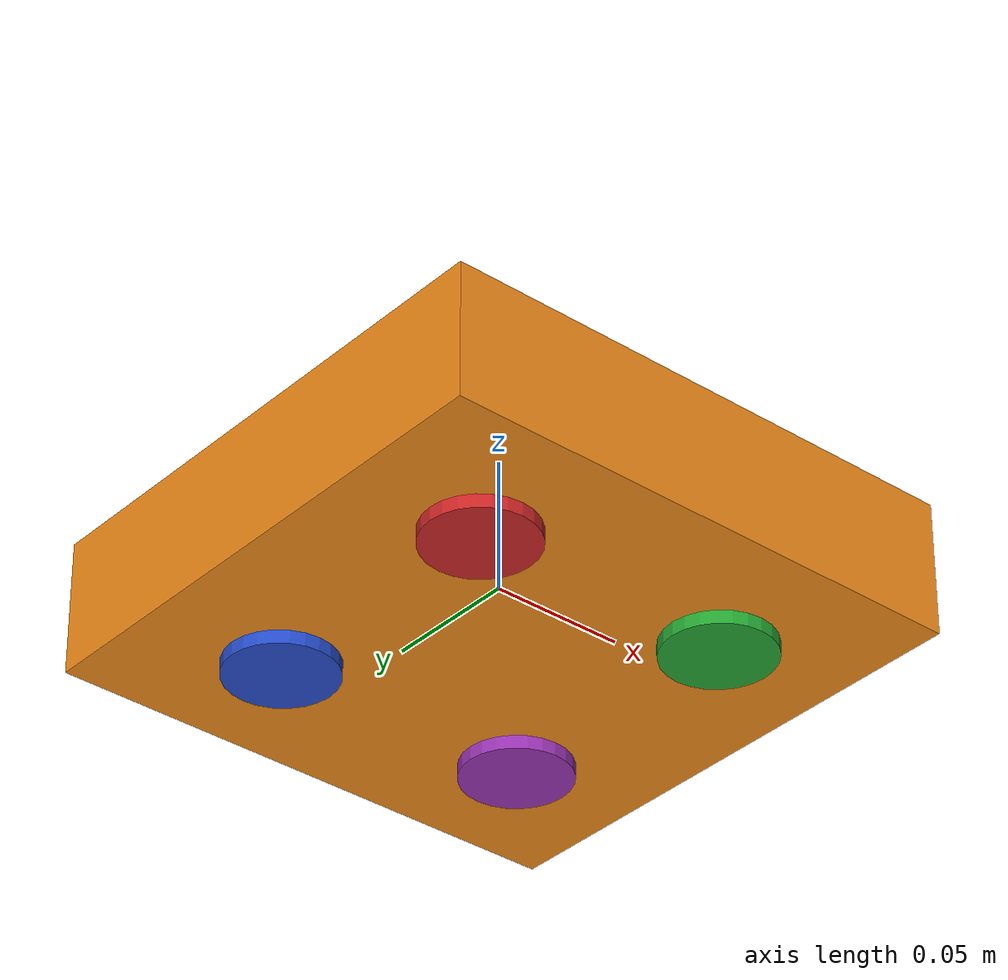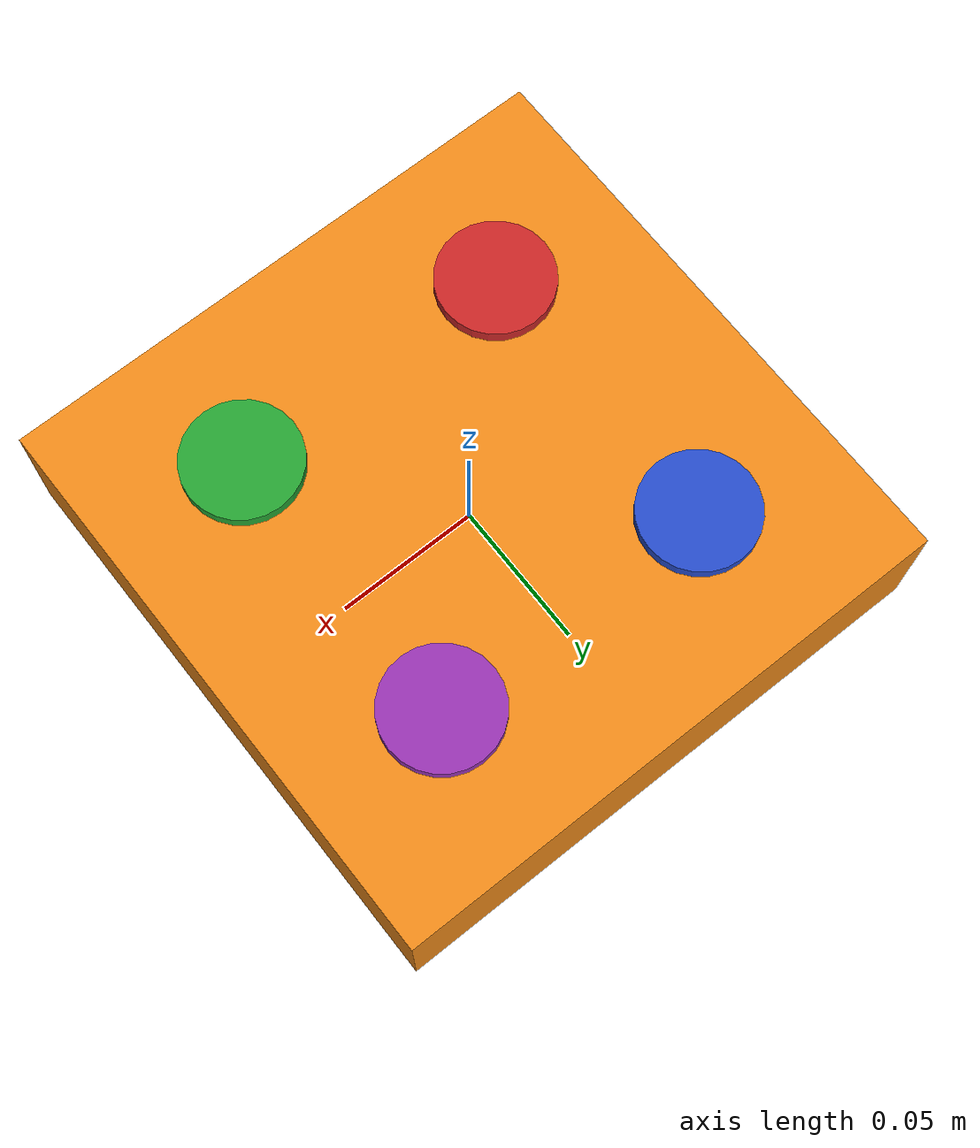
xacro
<?xml version="1.0"?>
<!-- HW3 -->
<robot name="object" xmlns:xacro="http://www.ros.org/wiki/xacro">

  <!-- Constants for robot dimensions -->
  <xacro:property name="mass" value="1" />
  <xacro:property name="box_length" value="0.2" />
  <xacro:property name="box_height" value="0.05" />
  <xacro:property name="cylinder_height" value="0.06" />
  <xacro:property name="cylinder_radius" value="0.02" />
  <xacro:property name="object_center" value="0.0" />

  <!-- Import all Gazebo-customization elements, including Gazebo colors -->
  <xacro:include filename="$(find visual_servoing_scara)/scara_description/urdf/object.gazebo" />
  <!-- Import Rviz colors -->
  <xacro:include filename="$(find visual_servoing_scara)/scara_description/urdf/materials.xacro" />

  <!-- Used for fixing robot to Gazebo 'base_link' -->
  <link name="world"/>

  <joint name="fixed_obj" type="floating">
    <parent link="world"/>
    <child link="obj_box"/>
  </joint>

  <!-- Box Object -->
  <link name="obj_box">
    <collision>
      <origin xyz="${object_center} 0 0" rpy="0 0 0"/>
      <geometry>
	       <box size="${box_length} ${box_length} ${box_height}"/>
      </geometry>
    </collision>

    <visual>
      <origin xyz="${object_center} 0 0" rpy="0 0 0"/>
      <geometry>
	       <box size="${box_length} ${box_length} ${box_height}"/>
      </geometry>
      <material name="orange"/>
    </visual>

    <inertial>
      <origin xyz="${object_center} 0 0" rpy="0 0 0"/>
      <mass value="${mass}"/>
      <inertia
    	  ixx="1.0" ixy="0.0" ixz="0.0"
    	  iyy="1.0" iyz="0.0"
    	  izz="1.0"/>
    </inertial>
  </link>

  <joint name="box_cylinder1_joint" type="fixed">
    <parent link="obj_box"/>
    <child link="obj_cylinder1"/>
  </joint>

  <joint name="box_cylinder2_joint" type="fixed">
    <parent link="obj_box"/>
    <child link="obj_cylinder2"/>
  </joint>

  <joint name="box_cylinder3_joint" type="fixed">
    <parent link="obj_box"/>
    <child link="obj_cylinder3"/>
  </joint>

  <joint name="box_cylinder4_joint" type="fixed">
    <parent link="obj_box"/>
    <child link="obj_cylinder4"/>
  </joint>

  <!-- Cylinders on the box -->
  <link name="obj_cylinder1">
    <collision>
      <origin xyz="${object_center - (box_length/4)} ${object_center + (box_length/4)} 0" rpy="0 0 0"/>
      <geometry>
        <cylinder length="${cylinder_height}" radius="${cylinder_radius}"/>
      </geometry>
    </collision>

    <visual>
      <origin xyz="${object_center - (box_length/4)} ${object_center + (box_length/4)} 0" rpy="0 0 0"/>
      <geometry>
         <cylinder length="${cylinder_height}" radius="${cylinder_radius}"/>
      </geometry>
      <material name="blue"/>
    </visual>

    <inertial>
      <origin xyz="${object_center - (box_length/4)} ${object_center + (box_length/4)} 0" rpy="0 0 0"/>
      <mass value="${mass}"/>
      <inertia
        ixx="1.0" ixy="0.0" ixz="0.0"
        iyy="1.0" iyz="0.0"
        izz="1.0"/>
    </inertial>
  </link>

  <link name="obj_cylinder2">
    <collision>
      <origin xyz="${object_center + (box_length/4)} ${object_center + (box_length/4)} 0" rpy="0 0 0"/>
      <geometry>
        <cylinder length="${cylinder_height}" radius="${cylinder_radius}"/>
      </geometry>
    </collision>

    <visual>
      <origin xyz="${object_center + (box_length/4)} ${object_center + (box_length/4)} 0" rpy="0 0 0"/>
      <geometry>
         <cylinder length="${cylinder_height}" radius="${cylinder_radius}"/>
      </geometry>
      <material name="purple"/>
    </visual>

    <inertial>
      <origin xyz="${object_center + (box_length/4)} ${object_center + (box_length/4)} 0" rpy="0 0 0"/>
      <mass value="${mass}"/>
      <inertia
        ixx="1.0" ixy="0.0" ixz="0.0"
        iyy="1.0" iyz="0.0"
        izz="1.0"/>
    </inertial>
  </link>

  <link name="obj_cylinder3">
    <collision>
      <origin xyz="${object_center + (box_length/4)} ${object_center - (box_length/4)} 0" rpy="0 0 0"/>
      <geometry>
        <cylinder length="${cylinder_height}" radius="${cylinder_radius}"/>
      </geometry>
    </collision>

    <visual>
      <origin xyz="${object_center + (box_length/4)} ${object_center - (box_length/4)} 0" rpy="0 0 0"/>
      <geometry>
         <cylinder length="${cylinder_height}" radius="${cylinder_radius}"/>
      </geometry>
      <material name="green"/>
    </visual>

    <inertial>
      <origin xyz="${object_center + (box_length/4)} ${object_center - (box_length/4)} 0" rpy="0 0 0"/>
      <mass value="${mass}"/>
      <inertia
        ixx="1.0" ixy="0.0" ixz="0.0"
        iyy="1.0" iyz="0.0"
        izz="1.0"/>
    </inertial>
  </link>

  <link name="obj_cylinder4">
    <collision>
      <origin xyz="${object_center - (box_length/4)} ${object_center - (box_length/4)} 0" rpy="0 0 0"/>
      <geometry>
        <cylinder length="${cylinder_height}" radius="${cylinder_radius}"/>
      </geometry>
    </collision>

    <visual>
      <origin xyz="${object_center - (box_length/4)} ${object_center - (box_length/4)} 0" rpy="0 0 0"/>
      <geometry>
        <cylinder length="${cylinder_height}" radius="${cylinder_radius}"/>
      </geometry>
      <material name="red"/>
    </visual>

    <inertial>
      <origin xyz="${object_center - (box_length/4)} ${object_center - (box_length/4)} 0" rpy="0 0 0"/>
      <mass value="${mass}"/>
      <inertia
        ixx="1.0" ixy="0.0" ixz="0.0"
        iyy="1.0" iyz="0.0"
        izz="1.0"/>
    </inertial>
  </link>

</robot>
